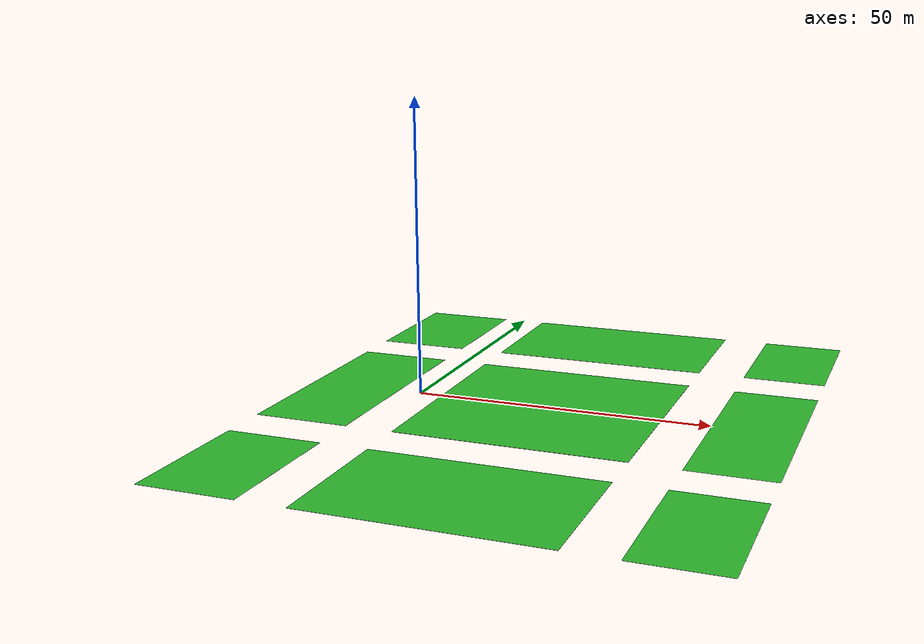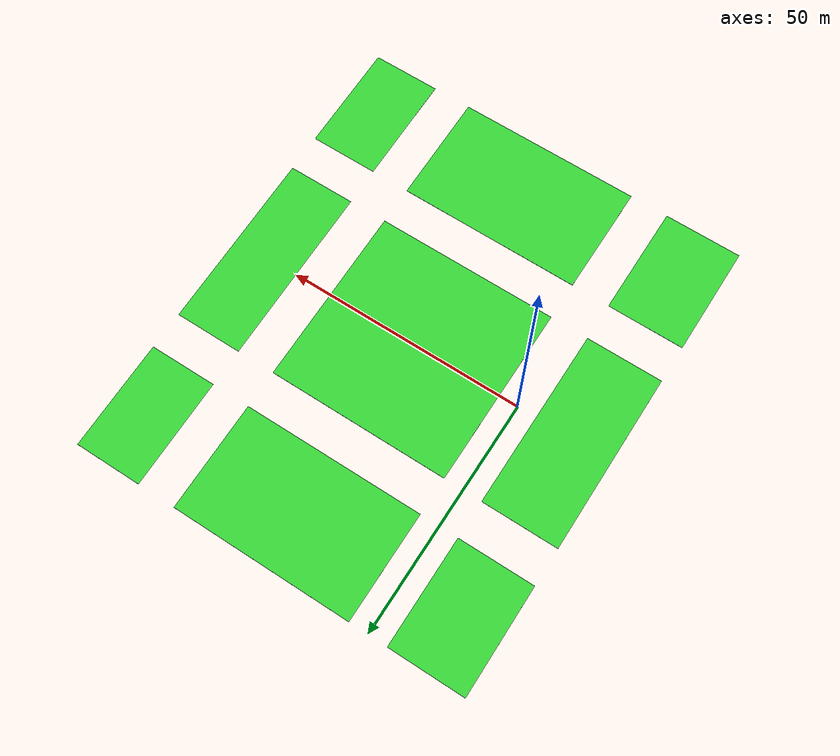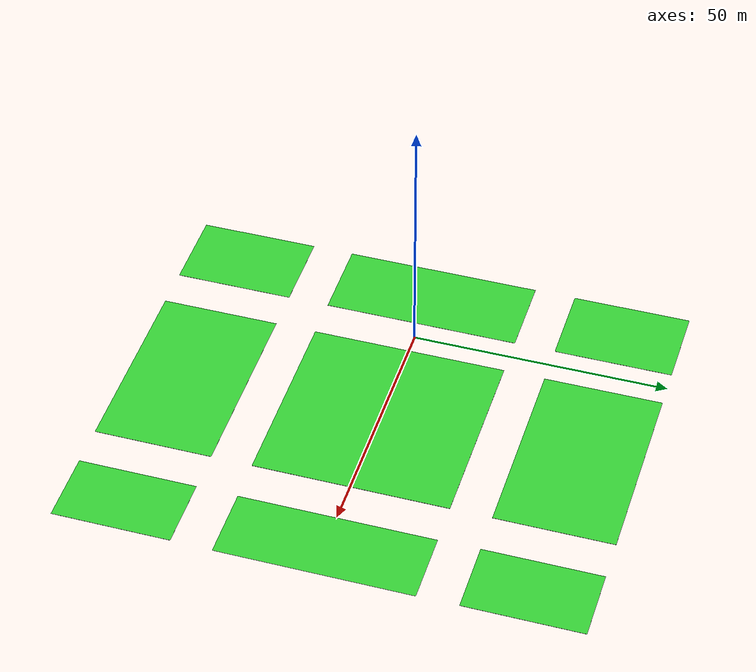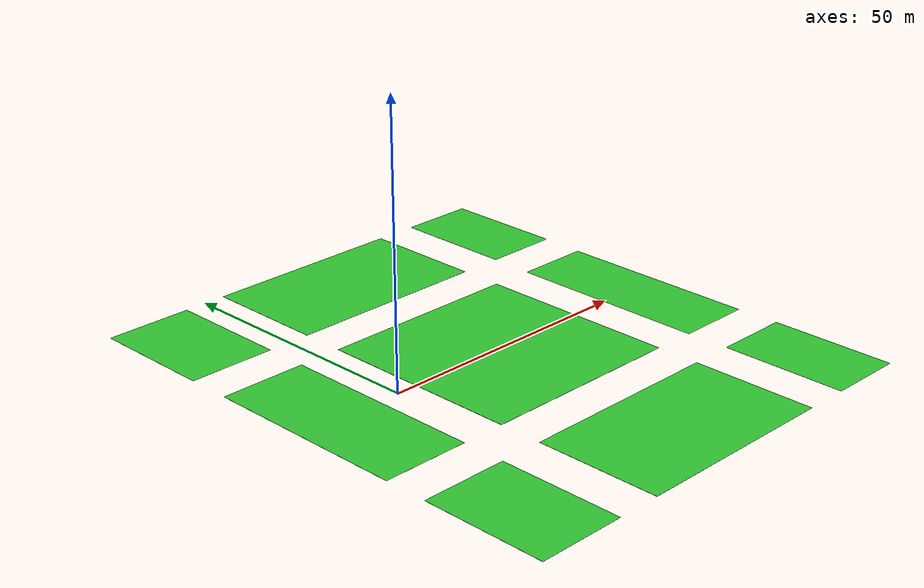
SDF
<sdf version="1.7">
  <model name="lawns">
      <static>true</static>

      <link name="north_lawn">
        <visual name="visual">
          <pose>57 0 0 0 0 0</pose>
            <geometry>
              <plane>
                <normal>0 0 1</normal>
                <size>14 38</size>
              </plane>
            </geometry>
          <material>
            <ambient>0.2 0.8 0.2 1</ambient>
            <diffuse>0.2 0.8 0.2 1</diffuse>
            <specular>0.1 0.1 0.1 1</specular>
          </material>
        </visual>
      </link>

      <link name="middle_lawn">
        <visual name="visual">
          <pose>23 0 0 0 0 0</pose>
            <geometry>
              <plane>
                <normal>0 0 1</normal>
                <size>38 38</size>
              </plane>
            </geometry>
          <material>
            <ambient>0.2 0.8 0.2 1</ambient>
            <diffuse>0.2 0.8 0.2 1</diffuse>
            <specular>0.1 0.1 0.1 1</specular>
          </material>
        </visual>
      </link>

      <link name="south_lawn">
        <visual name="visual">
          <pose>-12 0 0 0 0 0</pose>
            <geometry>
              <plane>
                <normal>0 0 1</normal>
                <size>16 38</size>
              </plane>
            </geometry>
          <material>
            <ambient>0.2 0.8 0.2 1</ambient>
            <diffuse>0.2 0.8 0.2 1</diffuse>
            <specular>0.1 0.1 0.1 1</specular>
          </material>
        </visual>
      </link>

      <link name="west_lawn">
        <visual name="visual">
          <pose>23 38.5 0 0 0 0</pose>
            <geometry>
              <plane>
                <normal>0 0 1</normal>
                <size>38 23</size>
              </plane>
            </geometry>
          <material>
            <ambient>0.2 0.8 0.2 1</ambient>
            <diffuse>0.2 0.8 0.2 1</diffuse>
            <specular>0.1 0.1 0.1 1</specular>
          </material>
        </visual>
      </link>

      <link name="east_lawn">
        <visual name="visual">
          <pose>23 -38.5 0 0 0 0</pose>
            <geometry>
              <plane>
                <normal>0 0 1</normal>
                <size>38 23</size>
              </plane>
            </geometry>
          <material>
            <ambient>0.2 0.8 0.2 1</ambient>
            <diffuse>0.2 0.8 0.2 1</diffuse>
            <specular>0.1 0.1 0.1 1</specular>
          </material>
        </visual>
      </link>

      <link name="northwest_lawn">
        <visual name="visual">
          <pose>57 38.5 0 0 0 0</pose>
            <geometry>
              <plane>
                <normal>0 0 1</normal>
                <size>14 23</size>
              </plane>
            </geometry>
          <material>
            <ambient>0.2 0.8 0.2 1</ambient>
            <diffuse>0.2 0.8 0.2 1</diffuse>
            <specular>0.1 0.1 0.1 1</specular>
          </material>
        </visual>
      </link>

      <link name="northeast_lawn">
        <visual name="visual">
          <pose>57 -38.5 0 0 0 0</pose>
            <geometry>
              <plane>
                <normal>0 0 1</normal>
                <size>14 23</size>
              </plane>
            </geometry>
          <material>
            <ambient>0.2 0.8 0.2 1</ambient>
            <diffuse>0.2 0.8 0.2 1</diffuse>
            <specular>0.1 0.1 0.1 1</specular>
          </material>
        </visual>
      </link>

      <link name="southwest_lawn">
        <visual name="visual">
          <pose>-12 -38.5 0 0 0 0</pose>
            <geometry>
              <plane>
                <normal>0 0 1</normal>
                <size>16 23</size>
              </plane>
            </geometry>
          <material>
            <ambient>0.2 0.8 0.2 1</ambient>
            <diffuse>0.2 0.8 0.2 1</diffuse>
            <specular>0.1 0.1 0.1 1</specular>
          </material>
        </visual>
      </link>

      <link name="southeast_lawn">
        <visual name="visual">
          <pose>-12 38.5 0 0 0 0</pose>
            <geometry>
              <plane>
                <normal>0 0 1</normal>
                <size>16 23</size>
              </plane>
            </geometry>
          <material>
            <ambient>0.2 0.8 0.2 1</ambient>
            <diffuse>0.2 0.8 0.2 1</diffuse>
            <specular>0.1 0.1 0.1 1</specular>
          </material>
        </visual>
      </link>

  </model>

</sdf>
